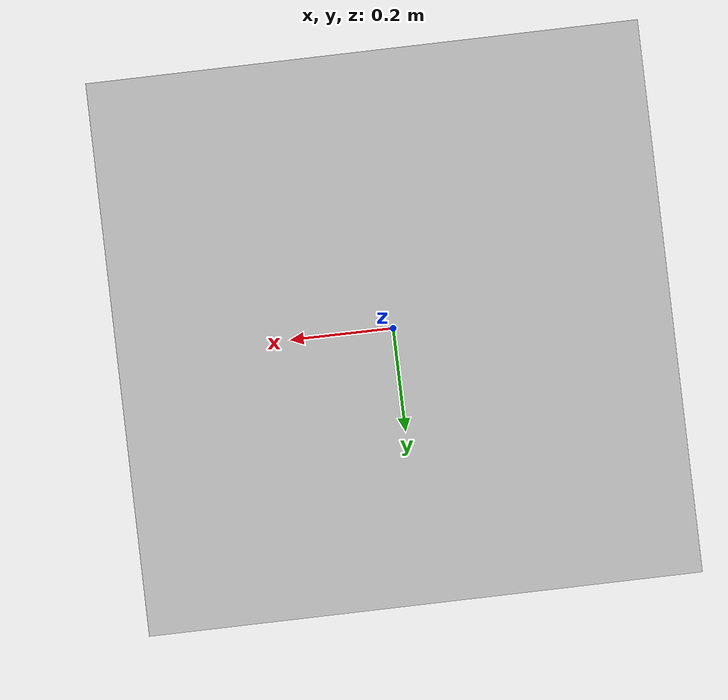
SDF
<?xml version="1.0" ?>
<sdf version="1.6">
  <model name="welding_board_doraemon">
    <static>true</static>
    <link name="link">
      <collision name="collision">
        <geometry>
            <box>
                <size>0.8 0.8 0.7</size>
            </box>
        </geometry>
      </collision>
      <visual name="visual">
        <geometry>
            <box>
                <size>0.8 0.8 0.7</size>
            </box>
        </geometry>
        <material>
            <script>
                <uri>model://welding_board_doraemon/materials/welding_board_color.material</uri>
                <name>doraemon_color</name>
            </script>
        </material>
      </visual>
    </link>
  </model>
</sdf>
